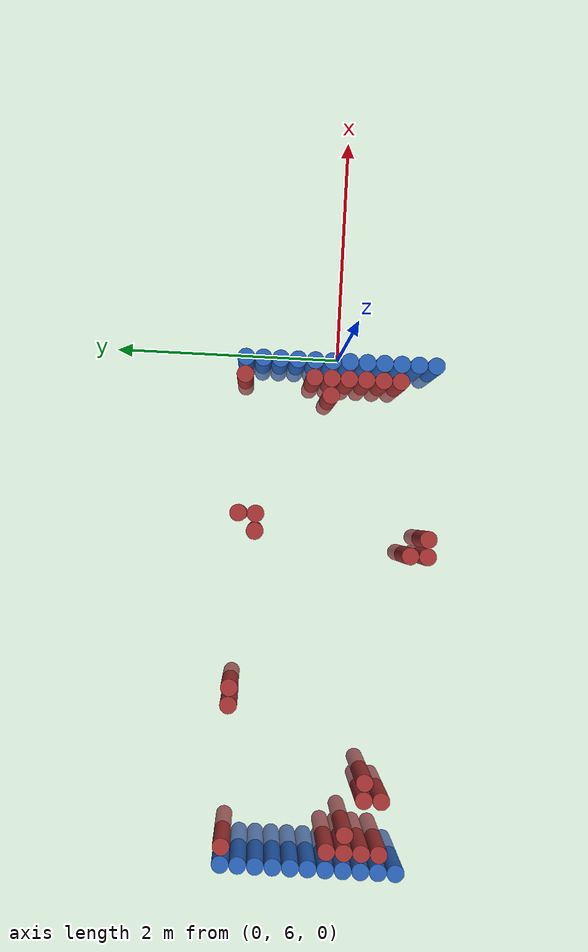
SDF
<sdf version="1.6">
 <world name="default">
  <model name="ground_plane">
   <static>1</static>
   <link name="link">
    <collision name="collision">
     <geometry><plane><normal>0 0 1</normal><size>100 100</size></plane></geometry>
     <surface><friction><ode><mu>100</mu><mu2>50</mu2></ode></friction></surface>
    </collision>
    <visual name="visual">
     <cast_shadows>0</cast_shadows>
     <geometry><plane><normal>0 0 1</normal><size>100 100</size></plane></geometry>
     <material>
      <script><uri>file://media/materials/scripts/gazebo.material</uri><name>Gazebo/Grey</name></script>
     </material>
    </visual>
   </link>
  </model>
  <model name="unit_cylinder_97">
   <static>1</static>
   <pose>-4.425000 5.325000 0.000000 0.000000 0.000000 0.000000</pose>
   <link name="link">
    <inertial>
     <mass>1</mass>
     <inertia><ixx>0.145833</ixx><ixy>0</ixy><ixz>0</ixz><iyy>0.145833</iyy><iyz>0</iyz><izz>0.125</izz></inertia>
    </inertial>
    <collision name="collision">
     <geometry><cylinder><radius>0.075000</radius><length>1</length></cylinder></geometry>
    </collision>
    <visual name="visual">
     <geometry><cylinder><radius>0.075000</radius><length>1</length></cylinder></geometry>
     <material>
      <ambient>0.152000 0.379000 0.720000 1</ambient>
      <diffuse>0.152000 0.379000 0.720000 1</diffuse>
     </material>
     <material>
      <script><name>Gazebo/Grey</name><uri>file://media/materials/scripts/gazebo.material</uri></script>
     </material>
    </visual>
   </link>
  </model>
  <model name="unit_cylinder_98">
   <static>1</static>
   <pose>-4.425000 5.475000 0.000000 0.000000 0.000000 0.000000</pose>
   <link name="link">
    <inertial>
     <mass>1</mass>
     <inertia><ixx>0.145833</ixx><ixy>0</ixy><ixz>0</ixz><iyy>0.145833</iyy><iyz>0</iyz><izz>0.125</izz></inertia>
    </inertial>
    <collision name="collision">
     <geometry><cylinder><radius>0.075000</radius><length>1</length></cylinder></geometry>
    </collision>
    <visual name="visual">
     <geometry><cylinder><radius>0.075000</radius><length>1</length></cylinder></geometry>
     <material>
      <ambient>0.152000 0.379000 0.720000 1</ambient>
      <diffuse>0.152000 0.379000 0.720000 1</diffuse>
     </material>
     <material>
      <script><name>Gazebo/Grey</name><uri>file://media/materials/scripts/gazebo.material</uri></script>
     </material>
    </visual>
   </link>
  </model>
  <model name="unit_cylinder_99">
   <static>1</static>
   <pose>-4.425000 5.625000 0.000000 0.000000 0.000000 0.000000</pose>
   <link name="link">
    <inertial>
     <mass>1</mass>
     <inertia><ixx>0.145833</ixx><ixy>0</ixy><ixz>0</ixz><iyy>0.145833</iyy><iyz>0</iyz><izz>0.125</izz></inertia>
    </inertial>
    <collision name="collision">
     <geometry><cylinder><radius>0.075000</radius><length>1</length></cylinder></geometry>
    </collision>
    <visual name="visual">
     <geometry><cylinder><radius>0.075000</radius><length>1</length></cylinder></geometry>
     <material>
      <ambient>0.152000 0.379000 0.720000 1</ambient>
      <diffuse>0.152000 0.379000 0.720000 1</diffuse>
     </material>
     <material>
      <script><name>Gazebo/Grey</name><uri>file://media/materials/scripts/gazebo.material</uri></script>
     </material>
    </visual>
   </link>
  </model>
  <model name="unit_cylinder_100">
   <static>1</static>
   <pose>-4.425000 5.775000 0.000000 0.000000 0.000000 0.000000</pose>
   <link name="link">
    <inertial>
     <mass>1</mass>
     <inertia><ixx>0.145833</ixx><ixy>0</ixy><ixz>0</ixz><iyy>0.145833</iyy><iyz>0</iyz><izz>0.125</izz></inertia>
    </inertial>
    <collision name="collision">
     <geometry><cylinder><radius>0.075000</radius><length>1</length></cylinder></geometry>
    </collision>
    <visual name="visual">
     <geometry><cylinder><radius>0.075000</radius><length>1</length></cylinder></geometry>
     <material>
      <ambient>0.152000 0.379000 0.720000 1</ambient>
      <diffuse>0.152000 0.379000 0.720000 1</diffuse>
     </material>
     <material>
      <script><name>Gazebo/Grey</name><uri>file://media/materials/scripts/gazebo.material</uri></script>
     </material>
    </visual>
   </link>
  </model>
  <model name="unit_cylinder_101">
   <static>1</static>
   <pose>-4.425000 5.925000 0.000000 0.000000 0.000000 0.000000</pose>
   <link name="link">
    <inertial>
     <mass>1</mass>
     <inertia><ixx>0.145833</ixx><ixy>0</ixy><ixz>0</ixz><iyy>0.145833</iyy><iyz>0</iyz><izz>0.125</izz></inertia>
    </inertial>
    <collision name="collision">
     <geometry><cylinder><radius>0.075000</radius><length>1</length></cylinder></geometry>
    </collision>
    <visual name="visual">
     <geometry><cylinder><radius>0.075000</radius><length>1</length></cylinder></geometry>
     <material>
      <ambient>0.152000 0.379000 0.720000 1</ambient>
      <diffuse>0.152000 0.379000 0.720000 1</diffuse>
     </material>
     <material>
      <script><name>Gazebo/Grey</name><uri>file://media/materials/scripts/gazebo.material</uri></script>
     </material>
    </visual>
   </link>
  </model>
  <model name="unit_cylinder_102">
   <static>1</static>
   <pose>-4.425000 6.075000 0.000000 0.000000 0.000000 0.000000</pose>
   <link name="link">
    <inertial>
     <mass>1</mass>
     <inertia><ixx>0.145833</ixx><ixy>0</ixy><ixz>0</ixz><iyy>0.145833</iyy><iyz>0</iyz><izz>0.125</izz></inertia>
    </inertial>
    <collision name="collision">
     <geometry><cylinder><radius>0.075000</radius><length>1</length></cylinder></geometry>
    </collision>
    <visual name="visual">
     <geometry><cylinder><radius>0.075000</radius><length>1</length></cylinder></geometry>
     <material>
      <ambient>0.152000 0.379000 0.720000 1</ambient>
      <diffuse>0.152000 0.379000 0.720000 1</diffuse>
     </material>
     <material>
      <script><name>Gazebo/Grey</name><uri>file://media/materials/scripts/gazebo.material</uri></script>
     </material>
    </visual>
   </link>
  </model>
  <model name="unit_cylinder_103">
   <static>1</static>
   <pose>-4.425000 6.225000 0.000000 0.000000 0.000000 0.000000</pose>
   <link name="link">
    <inertial>
     <mass>1</mass>
     <inertia><ixx>0.145833</ixx><ixy>0</ixy><ixz>0</ixz><iyy>0.145833</iyy><iyz>0</iyz><izz>0.125</izz></inertia>
    </inertial>
    <collision name="collision">
     <geometry><cylinder><radius>0.075000</radius><length>1</length></cylinder></geometry>
    </collision>
    <visual name="visual">
     <geometry><cylinder><radius>0.075000</radius><length>1</length></cylinder></geometry>
     <material>
      <ambient>0.152000 0.379000 0.720000 1</ambient>
      <diffuse>0.152000 0.379000 0.720000 1</diffuse>
     </material>
     <material>
      <script><name>Gazebo/Grey</name><uri>file://media/materials/scripts/gazebo.material</uri></script>
     </material>
    </visual>
   </link>
  </model>
  <model name="unit_cylinder_104">
   <static>1</static>
   <pose>-4.425000 6.375000 0.000000 0.000000 0.000000 0.000000</pose>
   <link name="link">
    <inertial>
     <mass>1</mass>
     <inertia><ixx>0.145833</ixx><ixy>0</ixy><ixz>0</ixz><iyy>0.145833</iyy><iyz>0</iyz><izz>0.125</izz></inertia>
    </inertial>
    <collision name="collision">
     <geometry><cylinder><radius>0.075000</radius><length>1</length></cylinder></geometry>
    </collision>
    <visual name="visual">
     <geometry><cylinder><radius>0.075000</radius><length>1</length></cylinder></geometry>
     <material>
      <ambient>0.152000 0.379000 0.720000 1</ambient>
      <diffuse>0.152000 0.379000 0.720000 1</diffuse>
     </material>
     <material>
      <script><name>Gazebo/Grey</name><uri>file://media/materials/scripts/gazebo.material</uri></script>
     </material>
    </visual>
   </link>
  </model>
  <model name="unit_cylinder_105">
   <static>1</static>
   <pose>-4.425000 6.525000 0.000000 0.000000 0.000000 0.000000</pose>
   <link name="link">
    <inertial>
     <mass>1</mass>
     <inertia><ixx>0.145833</ixx><ixy>0</ixy><ixz>0</ixz><iyy>0.145833</iyy><iyz>0</iyz><izz>0.125</izz></inertia>
    </inertial>
    <collision name="collision">
     <geometry><cylinder><radius>0.075000</radius><length>1</length></cylinder></geometry>
    </collision>
    <visual name="visual">
     <geometry><cylinder><radius>0.075000</radius><length>1</length></cylinder></geometry>
     <material>
      <ambient>0.152000 0.379000 0.720000 1</ambient>
      <diffuse>0.152000 0.379000 0.720000 1</diffuse>
     </material>
     <material>
      <script><name>Gazebo/Grey</name><uri>file://media/materials/scripts/gazebo.material</uri></script>
     </material>
    </visual>
   </link>
  </model>
  <model name="unit_cylinder_106">
   <static>1</static>
   <pose>-4.425000 6.675000 0.000000 0.000000 0.000000 0.000000</pose>
   <link name="link">
    <inertial>
     <mass>1</mass>
     <inertia><ixx>0.145833</ixx><ixy>0</ixy><ixz>0</ixz><iyy>0.145833</iyy><iyz>0</iyz><izz>0.125</izz></inertia>
    </inertial>
    <collision name="collision">
     <geometry><cylinder><radius>0.075000</radius><length>1</length></cylinder></geometry>
    </collision>
    <visual name="visual">
     <geometry><cylinder><radius>0.075000</radius><length>1</length></cylinder></geometry>
     <material>
      <ambient>0.152000 0.379000 0.720000 1</ambient>
      <diffuse>0.152000 0.379000 0.720000 1</diffuse>
     </material>
     <material>
      <script><name>Gazebo/Grey</name><uri>file://media/materials/scripts/gazebo.material</uri></script>
     </material>
    </visual>
   </link>
  </model>
  <model name="unit_cylinder_107">
   <static>1</static>
   <pose>-4.425000 6.825000 0.000000 0.000000 0.000000 0.000000</pose>
   <link name="link">
    <inertial>
     <mass>1</mass>
     <inertia><ixx>0.145833</ixx><ixy>0</ixy><ixz>0</ixz><iyy>0.145833</iyy><iyz>0</iyz><izz>0.125</izz></inertia>
    </inertial>
    <collision name="collision">
     <geometry><cylinder><radius>0.075000</radius><length>1</length></cylinder></geometry>
    </collision>
    <visual name="visual">
     <geometry><cylinder><radius>0.075000</radius><length>1</length></cylinder></geometry>
     <material>
      <ambient>0.152000 0.379000 0.720000 1</ambient>
      <diffuse>0.152000 0.379000 0.720000 1</diffuse>
     </material>
     <material>
      <script><name>Gazebo/Grey</name><uri>file://media/materials/scripts/gazebo.material</uri></script>
     </material>
    </visual>
   </link>
  </model>
  <model name="unit_cylinder_126">
   <static>1</static>
   <pose>-4.275000 5.475000 0.000000 0.000000 0.000000 0.000000</pose>
   <link name="link">
    <inertial>
     <mass>1</mass>
     <inertia><ixx>0.145833</ixx><ixy>0</ixy><ixz>0</ixz><iyy>0.145833</iyy><iyz>0</iyz><izz>0.125</izz></inertia>
    </inertial>
    <collision name="collision">
     <geometry><cylinder><radius>0.075000</radius><length>1</length></cylinder></geometry>
    </collision>
    <visual name="visual">
     <geometry><cylinder><radius>0.075000</radius><length>1</length></cylinder></geometry>
     <material>
      <ambient>0.648000 0.192000 0.192000 1</ambient>
      <diffuse>0.648000 0.192000 0.192000 1</diffuse>
     </material>
     <material>
      <script><name>Gazebo/Grey</name><uri>file://media/materials/scripts/gazebo.material</uri></script>
     </material>
    </visual>
   </link>
  </model>
  <model name="unit_cylinder_127">
   <static>1</static>
   <pose>-4.275000 5.625000 0.000000 0.000000 0.000000 0.000000</pose>
   <link name="link">
    <inertial>
     <mass>1</mass>
     <inertia><ixx>0.145833</ixx><ixy>0</ixy><ixz>0</ixz><iyy>0.145833</iyy><iyz>0</iyz><izz>0.125</izz></inertia>
    </inertial>
    <collision name="collision">
     <geometry><cylinder><radius>0.075000</radius><length>1</length></cylinder></geometry>
    </collision>
    <visual name="visual">
     <geometry><cylinder><radius>0.075000</radius><length>1</length></cylinder></geometry>
     <material>
      <ambient>0.648000 0.192000 0.192000 1</ambient>
      <diffuse>0.648000 0.192000 0.192000 1</diffuse>
     </material>
     <material>
      <script><name>Gazebo/Grey</name><uri>file://media/materials/scripts/gazebo.material</uri></script>
     </material>
    </visual>
   </link>
  </model>
  <model name="unit_cylinder_128">
   <static>1</static>
   <pose>-4.275000 5.775000 0.000000 0.000000 0.000000 0.000000</pose>
   <link name="link">
    <inertial>
     <mass>1</mass>
     <inertia><ixx>0.145833</ixx><ixy>0</ixy><ixz>0</ixz><iyy>0.145833</iyy><iyz>0</iyz><izz>0.125</izz></inertia>
    </inertial>
    <collision name="collision">
     <geometry><cylinder><radius>0.075000</radius><length>1</length></cylinder></geometry>
    </collision>
    <visual name="visual">
     <geometry><cylinder><radius>0.075000</radius><length>1</length></cylinder></geometry>
     <material>
      <ambient>0.648000 0.192000 0.192000 1</ambient>
      <diffuse>0.648000 0.192000 0.192000 1</diffuse>
     </material>
     <material>
      <script><name>Gazebo/Grey</name><uri>file://media/materials/scripts/gazebo.material</uri></script>
     </material>
    </visual>
   </link>
  </model>
  <model name="unit_cylinder_129">
   <static>1</static>
   <pose>-4.275000 5.925000 0.000000 0.000000 0.000000 0.000000</pose>
   <link name="link">
    <inertial>
     <mass>1</mass>
     <inertia><ixx>0.145833</ixx><ixy>0</ixy><ixz>0</ixz><iyy>0.145833</iyy><iyz>0</iyz><izz>0.125</izz></inertia>
    </inertial>
    <collision name="collision">
     <geometry><cylinder><radius>0.075000</radius><length>1</length></cylinder></geometry>
    </collision>
    <visual name="visual">
     <geometry><cylinder><radius>0.075000</radius><length>1</length></cylinder></geometry>
     <material>
      <ambient>0.648000 0.192000 0.192000 1</ambient>
      <diffuse>0.648000 0.192000 0.192000 1</diffuse>
     </material>
     <material>
      <script><name>Gazebo/Grey</name><uri>file://media/materials/scripts/gazebo.material</uri></script>
     </material>
    </visual>
   </link>
  </model>
  <model name="unit_cylinder_130">
   <static>1</static>
   <pose>-4.275000 6.825000 0.000000 0.000000 0.000000 0.000000</pose>
   <link name="link">
    <inertial>
     <mass>1</mass>
     <inertia><ixx>0.145833</ixx><ixy>0</ixy><ixz>0</ixz><iyy>0.145833</iyy><iyz>0</iyz><izz>0.125</izz></inertia>
    </inertial>
    <collision name="collision">
     <geometry><cylinder><radius>0.075000</radius><length>1</length></cylinder></geometry>
    </collision>
    <visual name="visual">
     <geometry><cylinder><radius>0.075000</radius><length>1</length></cylinder></geometry>
     <material>
      <ambient>0.648000 0.192000 0.192000 1</ambient>
      <diffuse>0.648000 0.192000 0.192000 1</diffuse>
     </material>
     <material>
      <script><name>Gazebo/Grey</name><uri>file://media/materials/scripts/gazebo.material</uri></script>
     </material>
    </visual>
   </link>
  </model>
  <model name="unit_cylinder_138">
   <static>1</static>
   <pose>-4.125000 5.775000 0.000000 0.000000 0.000000 0.000000</pose>
   <link name="link">
    <inertial>
     <mass>1</mass>
     <inertia><ixx>0.145833</ixx><ixy>0</ixy><ixz>0</ixz><iyy>0.145833</iyy><iyz>0</iyz><izz>0.125</izz></inertia>
    </inertial>
    <collision name="collision">
     <geometry><cylinder><radius>0.075000</radius><length>1</length></cylinder></geometry>
    </collision>
    <visual name="visual">
     <geometry><cylinder><radius>0.075000</radius><length>1</length></cylinder></geometry>
     <material>
      <ambient>0.648000 0.192000 0.192000 1</ambient>
      <diffuse>0.648000 0.192000 0.192000 1</diffuse>
     </material>
     <material>
      <script><name>Gazebo/Grey</name><uri>file://media/materials/scripts/gazebo.material</uri></script>
     </material>
    </visual>
   </link>
  </model>
  <model name="unit_cylinder_144">
   <static>1</static>
   <pose>-3.825000 5.475000 0.000000 0.000000 0.000000 0.000000</pose>
   <link name="link">
    <inertial>
     <mass>1</mass>
     <inertia><ixx>0.145833</ixx><ixy>0</ixy><ixz>0</ixz><iyy>0.145833</iyy><iyz>0</iyz><izz>0.125</izz></inertia>
    </inertial>
    <collision name="collision">
     <geometry><cylinder><radius>0.075000</radius><length>1</length></cylinder></geometry>
    </collision>
    <visual name="visual">
     <geometry><cylinder><radius>0.075000</radius><length>1</length></cylinder></geometry>
     <material>
      <ambient>0.648000 0.192000 0.192000 1</ambient>
      <diffuse>0.648000 0.192000 0.192000 1</diffuse>
     </material>
     <material>
      <script><name>Gazebo/Grey</name><uri>file://media/materials/scripts/gazebo.material</uri></script>
     </material>
    </visual>
   </link>
  </model>
  <model name="unit_cylinder_145">
   <static>1</static>
   <pose>-3.825000 5.625000 0.000000 0.000000 0.000000 0.000000</pose>
   <link name="link">
    <inertial>
     <mass>1</mass>
     <inertia><ixx>0.145833</ixx><ixy>0</ixy><ixz>0</ixz><iyy>0.145833</iyy><iyz>0</iyz><izz>0.125</izz></inertia>
    </inertial>
    <collision name="collision">
     <geometry><cylinder><radius>0.075000</radius><length>1</length></cylinder></geometry>
    </collision>
    <visual name="visual">
     <geometry><cylinder><radius>0.075000</radius><length>1</length></cylinder></geometry>
     <material>
      <ambient>0.648000 0.192000 0.192000 1</ambient>
      <diffuse>0.648000 0.192000 0.192000 1</diffuse>
     </material>
     <material>
      <script><name>Gazebo/Grey</name><uri>file://media/materials/scripts/gazebo.material</uri></script>
     </material>
    </visual>
   </link>
  </model>
  <model name="unit_cylinder_147">
   <static>1</static>
   <pose>-3.675000 5.625000 0.000000 0.000000 0.000000 0.000000</pose>
   <link name="link">
    <inertial>
     <mass>1</mass>
     <inertia><ixx>0.145833</ixx><ixy>0</ixy><ixz>0</ixz><iyy>0.145833</iyy><iyz>0</iyz><izz>0.125</izz></inertia>
    </inertial>
    <collision name="collision">
     <geometry><cylinder><radius>0.075000</radius><length>1</length></cylinder></geometry>
    </collision>
    <visual name="visual">
     <geometry><cylinder><radius>0.075000</radius><length>1</length></cylinder></geometry>
     <material>
      <ambient>0.648000 0.192000 0.192000 1</ambient>
      <diffuse>0.648000 0.192000 0.192000 1</diffuse>
     </material>
     <material>
      <script><name>Gazebo/Grey</name><uri>file://media/materials/scripts/gazebo.material</uri></script>
     </material>
    </visual>
   </link>
  </model>
  <model name="unit_cylinder_148">
   <static>1</static>
   <pose>-3.075000 6.825000 0.000000 0.000000 0.000000 0.000000</pose>
   <link name="link">
    <inertial>
     <mass>1</mass>
     <inertia><ixx>0.145833</ixx><ixy>0</ixy><ixz>0</ixz><iyy>0.145833</iyy><iyz>0</iyz><izz>0.125</izz></inertia>
    </inertial>
    <collision name="collision">
     <geometry><cylinder><radius>0.075000</radius><length>1</length></cylinder></geometry>
    </collision>
    <visual name="visual">
     <geometry><cylinder><radius>0.075000</radius><length>1</length></cylinder></geometry>
     <material>
      <ambient>0.648000 0.192000 0.192000 1</ambient>
      <diffuse>0.648000 0.192000 0.192000 1</diffuse>
     </material>
     <material>
      <script><name>Gazebo/Grey</name><uri>file://media/materials/scripts/gazebo.material</uri></script>
     </material>
    </visual>
   </link>
  </model>
  <model name="unit_cylinder_152">
   <static>1</static>
   <pose>-2.925000 6.825000 0.000000 0.000000 0.000000 0.000000</pose>
   <link name="link">
    <inertial>
     <mass>1</mass>
     <inertia><ixx>0.145833</ixx><ixy>0</ixy><ixz>0</ixz><iyy>0.145833</iyy><iyz>0</iyz><izz>0.125</izz></inertia>
    </inertial>
    <collision name="collision">
     <geometry><cylinder><radius>0.075000</radius><length>1</length></cylinder></geometry>
    </collision>
    <visual name="visual">
     <geometry><cylinder><radius>0.075000</radius><length>1</length></cylinder></geometry>
     <material>
      <ambient>0.648000 0.192000 0.192000 1</ambient>
      <diffuse>0.648000 0.192000 0.192000 1</diffuse>
     </material>
     <material>
      <script><name>Gazebo/Grey</name><uri>file://media/materials/scripts/gazebo.material</uri></script>
     </material>
    </visual>
   </link>
  </model>
  <model name="unit_cylinder_168">
   <static>1</static>
   <pose>-1.725000 5.175000 0.000000 0.000000 0.000000 0.000000</pose>
   <link name="link">
    <inertial>
     <mass>1</mass>
     <inertia><ixx>0.145833</ixx><ixy>0</ixy><ixz>0</ixz><iyy>0.145833</iyy><iyz>0</iyz><izz>0.125</izz></inertia>
    </inertial>
    <collision name="collision">
     <geometry><cylinder><radius>0.075000</radius><length>1</length></cylinder></geometry>
    </collision>
    <visual name="visual">
     <geometry><cylinder><radius>0.075000</radius><length>1</length></cylinder></geometry>
     <material>
      <ambient>0.648000 0.192000 0.192000 1</ambient>
      <diffuse>0.648000 0.192000 0.192000 1</diffuse>
     </material>
     <material>
      <script><name>Gazebo/Grey</name><uri>file://media/materials/scripts/gazebo.material</uri></script>
     </material>
    </visual>
   </link>
  </model>
  <model name="unit_cylinder_169">
   <static>1</static>
   <pose>-1.725000 5.325000 0.000000 0.000000 0.000000 0.000000</pose>
   <link name="link">
    <inertial>
     <mass>1</mass>
     <inertia><ixx>0.145833</ixx><ixy>0</ixy><ixz>0</ixz><iyy>0.145833</iyy><iyz>0</iyz><izz>0.125</izz></inertia>
    </inertial>
    <collision name="collision">
     <geometry><cylinder><radius>0.075000</radius><length>1</length></cylinder></geometry>
    </collision>
    <visual name="visual">
     <geometry><cylinder><radius>0.075000</radius><length>1</length></cylinder></geometry>
     <material>
      <ambient>0.648000 0.192000 0.192000 1</ambient>
      <diffuse>0.648000 0.192000 0.192000 1</diffuse>
     </material>
     <material>
      <script><name>Gazebo/Grey</name><uri>file://media/materials/scripts/gazebo.material</uri></script>
     </material>
    </visual>
   </link>
  </model>
  <model name="unit_cylinder_173">
   <static>1</static>
   <pose>-1.575000 5.175000 0.000000 0.000000 0.000000 0.000000</pose>
   <link name="link">
    <inertial>
     <mass>1</mass>
     <inertia><ixx>0.145833</ixx><ixy>0</ixy><ixz>0</ixz><iyy>0.145833</iyy><iyz>0</iyz><izz>0.125</izz></inertia>
    </inertial>
    <collision name="collision">
     <geometry><cylinder><radius>0.075000</radius><length>1</length></cylinder></geometry>
    </collision>
    <visual name="visual">
     <geometry><cylinder><radius>0.075000</radius><length>1</length></cylinder></geometry>
     <material>
      <ambient>0.648000 0.192000 0.192000 1</ambient>
      <diffuse>0.648000 0.192000 0.192000 1</diffuse>
     </material>
     <material>
      <script><name>Gazebo/Grey</name><uri>file://media/materials/scripts/gazebo.material</uri></script>
     </material>
    </visual>
   </link>
  </model>
  <model name="unit_cylinder_174">
   <static>1</static>
   <pose>-1.575000 6.675000 0.000000 0.000000 0.000000 0.000000</pose>
   <link name="link">
    <inertial>
     <mass>1</mass>
     <inertia><ixx>0.145833</ixx><ixy>0</ixy><ixz>0</ixz><iyy>0.145833</iyy><iyz>0</iyz><izz>0.125</izz></inertia>
    </inertial>
    <collision name="collision">
     <geometry><cylinder><radius>0.075000</radius><length>1</length></cylinder></geometry>
    </collision>
    <visual name="visual">
     <geometry><cylinder><radius>0.075000</radius><length>1</length></cylinder></geometry>
     <material>
      <ambient>0.648000 0.192000 0.192000 1</ambient>
      <diffuse>0.648000 0.192000 0.192000 1</diffuse>
     </material>
     <material>
      <script><name>Gazebo/Grey</name><uri>file://media/materials/scripts/gazebo.material</uri></script>
     </material>
    </visual>
   </link>
  </model>
  <model name="unit_cylinder_178">
   <static>1</static>
   <pose>-1.425000 6.675000 0.000000 0.000000 0.000000 0.000000</pose>
   <link name="link">
    <inertial>
     <mass>1</mass>
     <inertia><ixx>0.145833</ixx><ixy>0</ixy><ixz>0</ixz><iyy>0.145833</iyy><iyz>0</iyz><izz>0.125</izz></inertia>
    </inertial>
    <collision name="collision">
     <geometry><cylinder><radius>0.075000</radius><length>1</length></cylinder></geometry>
    </collision>
    <visual name="visual">
     <geometry><cylinder><radius>0.075000</radius><length>1</length></cylinder></geometry>
     <material>
      <ambient>0.648000 0.192000 0.192000 1</ambient>
      <diffuse>0.648000 0.192000 0.192000 1</diffuse>
     </material>
     <material>
      <script><name>Gazebo/Grey</name><uri>file://media/materials/scripts/gazebo.material</uri></script>
     </material>
    </visual>
   </link>
  </model>
  <model name="unit_cylinder_179">
   <static>1</static>
   <pose>-1.425000 6.825000 0.000000 0.000000 0.000000 0.000000</pose>
   <link name="link">
    <inertial>
     <mass>1</mass>
     <inertia><ixx>0.145833</ixx><ixy>0</ixy><ixz>0</ixz><iyy>0.145833</iyy><iyz>0</iyz><izz>0.125</izz></inertia>
    </inertial>
    <collision name="collision">
     <geometry><cylinder><radius>0.075000</radius><length>1</length></cylinder></geometry>
    </collision>
    <visual name="visual">
     <geometry><cylinder><radius>0.075000</radius><length>1</length></cylinder></geometry>
     <material>
      <ambient>0.648000 0.192000 0.192000 1</ambient>
      <diffuse>0.648000 0.192000 0.192000 1</diffuse>
     </material>
     <material>
      <script><name>Gazebo/Grey</name><uri>file://media/materials/scripts/gazebo.material</uri></script>
     </material>
    </visual>
   </link>
  </model>
  <model name="unit_cylinder_195">
   <static>1</static>
   <pose>-0.375000 6.075000 0.000000 0.000000 0.000000 0.000000</pose>
   <link name="link">
    <inertial>
     <mass>1</mass>
     <inertia><ixx>0.145833</ixx><ixy>0</ixy><ixz>0</ixz><iyy>0.145833</iyy><iyz>0</iyz><izz>0.125</izz></inertia>
    </inertial>
    <collision name="collision">
     <geometry><cylinder><radius>0.075000</radius><length>1</length></cylinder></geometry>
    </collision>
    <visual name="visual">
     <geometry><cylinder><radius>0.075000</radius><length>1</length></cylinder></geometry>
     <material>
      <ambient>0.648000 0.192000 0.192000 1</ambient>
      <diffuse>0.648000 0.192000 0.192000 1</diffuse>
     </material>
     <material>
      <script><name>Gazebo/Grey</name><uri>file://media/materials/scripts/gazebo.material</uri></script>
     </material>
    </visual>
   </link>
  </model>
  <model name="unit_cylinder_198">
   <static>1</static>
   <pose>-0.225000 5.475000 0.000000 0.000000 0.000000 0.000000</pose>
   <link name="link">
    <inertial>
     <mass>1</mass>
     <inertia><ixx>0.145833</ixx><ixy>0</ixy><ixz>0</ixz><iyy>0.145833</iyy><iyz>0</iyz><izz>0.125</izz></inertia>
    </inertial>
    <collision name="collision">
     <geometry><cylinder><radius>0.075000</radius><length>1</length></cylinder></geometry>
    </collision>
    <visual name="visual">
     <geometry><cylinder><radius>0.075000</radius><length>1</length></cylinder></geometry>
     <material>
      <ambient>0.648000 0.192000 0.192000 1</ambient>
      <diffuse>0.648000 0.192000 0.192000 1</diffuse>
     </material>
     <material>
      <script><name>Gazebo/Grey</name><uri>file://media/materials/scripts/gazebo.material</uri></script>
     </material>
    </visual>
   </link>
  </model>
  <model name="unit_cylinder_199">
   <static>1</static>
   <pose>-0.225000 5.625000 0.000000 0.000000 0.000000 0.000000</pose>
   <link name="link">
    <inertial>
     <mass>1</mass>
     <inertia><ixx>0.145833</ixx><ixy>0</ixy><ixz>0</ixz><iyy>0.145833</iyy><iyz>0</iyz><izz>0.125</izz></inertia>
    </inertial>
    <collision name="collision">
     <geometry><cylinder><radius>0.075000</radius><length>1</length></cylinder></geometry>
    </collision>
    <visual name="visual">
     <geometry><cylinder><radius>0.075000</radius><length>1</length></cylinder></geometry>
     <material>
      <ambient>0.648000 0.192000 0.192000 1</ambient>
      <diffuse>0.648000 0.192000 0.192000 1</diffuse>
     </material>
     <material>
      <script><name>Gazebo/Grey</name><uri>file://media/materials/scripts/gazebo.material</uri></script>
     </material>
    </visual>
   </link>
  </model>
  <model name="unit_cylinder_200">
   <static>1</static>
   <pose>-0.225000 5.775000 0.000000 0.000000 0.000000 0.000000</pose>
   <link name="link">
    <inertial>
     <mass>1</mass>
     <inertia><ixx>0.145833</ixx><ixy>0</ixy><ixz>0</ixz><iyy>0.145833</iyy><iyz>0</iyz><izz>0.125</izz></inertia>
    </inertial>
    <collision name="collision">
     <geometry><cylinder><radius>0.075000</radius><length>1</length></cylinder></geometry>
    </collision>
    <visual name="visual">
     <geometry><cylinder><radius>0.075000</radius><length>1</length></cylinder></geometry>
     <material>
      <ambient>0.648000 0.192000 0.192000 1</ambient>
      <diffuse>0.648000 0.192000 0.192000 1</diffuse>
     </material>
     <material>
      <script><name>Gazebo/Grey</name><uri>file://media/materials/scripts/gazebo.material</uri></script>
     </material>
    </visual>
   </link>
  </model>
  <model name="unit_cylinder_201">
   <static>1</static>
   <pose>-0.225000 5.925000 0.000000 0.000000 0.000000 0.000000</pose>
   <link name="link">
    <inertial>
     <mass>1</mass>
     <inertia><ixx>0.145833</ixx><ixy>0</ixy><ixz>0</ixz><iyy>0.145833</iyy><iyz>0</iyz><izz>0.125</izz></inertia>
    </inertial>
    <collision name="collision">
     <geometry><cylinder><radius>0.075000</radius><length>1</length></cylinder></geometry>
    </collision>
    <visual name="visual">
     <geometry><cylinder><radius>0.075000</radius><length>1</length></cylinder></geometry>
     <material>
      <ambient>0.648000 0.192000 0.192000 1</ambient>
      <diffuse>0.648000 0.192000 0.192000 1</diffuse>
     </material>
     <material>
      <script><name>Gazebo/Grey</name><uri>file://media/materials/scripts/gazebo.material</uri></script>
     </material>
    </visual>
   </link>
  </model>
  <model name="unit_cylinder_202">
   <static>1</static>
   <pose>-0.225000 6.075000 0.000000 0.000000 0.000000 0.000000</pose>
   <link name="link">
    <inertial>
     <mass>1</mass>
     <inertia><ixx>0.145833</ixx><ixy>0</ixy><ixz>0</ixz><iyy>0.145833</iyy><iyz>0</iyz><izz>0.125</izz></inertia>
    </inertial>
    <collision name="collision">
     <geometry><cylinder><radius>0.075000</radius><length>1</length></cylinder></geometry>
    </collision>
    <visual name="visual">
     <geometry><cylinder><radius>0.075000</radius><length>1</length></cylinder></geometry>
     <material>
      <ambient>0.648000 0.192000 0.192000 1</ambient>
      <diffuse>0.648000 0.192000 0.192000 1</diffuse>
     </material>
     <material>
      <script><name>Gazebo/Grey</name><uri>file://media/materials/scripts/gazebo.material</uri></script>
     </material>
    </visual>
   </link>
  </model>
  <model name="unit_cylinder_203">
   <static>1</static>
   <pose>-0.225000 6.225000 0.000000 0.000000 0.000000 0.000000</pose>
   <link name="link">
    <inertial>
     <mass>1</mass>
     <inertia><ixx>0.145833</ixx><ixy>0</ixy><ixz>0</ixz><iyy>0.145833</iyy><iyz>0</iyz><izz>0.125</izz></inertia>
    </inertial>
    <collision name="collision">
     <geometry><cylinder><radius>0.075000</radius><length>1</length></cylinder></geometry>
    </collision>
    <visual name="visual">
     <geometry><cylinder><radius>0.075000</radius><length>1</length></cylinder></geometry>
     <material>
      <ambient>0.648000 0.192000 0.192000 1</ambient>
      <diffuse>0.648000 0.192000 0.192000 1</diffuse>
     </material>
     <material>
      <script><name>Gazebo/Grey</name><uri>file://media/materials/scripts/gazebo.material</uri></script>
     </material>
    </visual>
   </link>
  </model>
  <model name="unit_cylinder_204">
   <static>1</static>
   <pose>-0.225000 6.825000 0.000000 0.000000 0.000000 0.000000</pose>
   <link name="link">
    <inertial>
     <mass>1</mass>
     <inertia><ixx>0.145833</ixx><ixy>0</ixy><ixz>0</ixz><iyy>0.145833</iyy><iyz>0</iyz><izz>0.125</izz></inertia>
    </inertial>
    <collision name="collision">
     <geometry><cylinder><radius>0.075000</radius><length>1</length></cylinder></geometry>
    </collision>
    <visual name="visual">
     <geometry><cylinder><radius>0.075000</radius><length>1</length></cylinder></geometry>
     <material>
      <ambient>0.648000 0.192000 0.192000 1</ambient>
      <diffuse>0.648000 0.192000 0.192000 1</diffuse>
     </material>
     <material>
      <script><name>Gazebo/Grey</name><uri>file://media/materials/scripts/gazebo.material</uri></script>
     </material>
    </visual>
   </link>
  </model>
  <model name="unit_cylinder_211">
   <static>1</static>
   <pose>-0.075000 5.175000 0.000000 0.000000 0.000000 0.000000</pose>
   <link name="link">
    <inertial>
     <mass>1</mass>
     <inertia><ixx>0.145833</ixx><ixy>0</ixy><ixz>0</ixz><iyy>0.145833</iyy><iyz>0</iyz><izz>0.125</izz></inertia>
    </inertial>
    <collision name="collision">
     <geometry><cylinder><radius>0.075000</radius><length>1</length></cylinder></geometry>
    </collision>
    <visual name="visual">
     <geometry><cylinder><radius>0.075000</radius><length>1</length></cylinder></geometry>
     <material>
      <ambient>0.152000 0.379000 0.720000 1</ambient>
      <diffuse>0.152000 0.379000 0.720000 1</diffuse>
     </material>
     <material>
      <script><name>Gazebo/Grey</name><uri>file://media/materials/scripts/gazebo.material</uri></script>
     </material>
    </visual>
   </link>
  </model>
  <model name="unit_cylinder_212">
   <static>1</static>
   <pose>-0.075000 5.325000 0.000000 0.000000 0.000000 0.000000</pose>
   <link name="link">
    <inertial>
     <mass>1</mass>
     <inertia><ixx>0.145833</ixx><ixy>0</ixy><ixz>0</ixz><iyy>0.145833</iyy><iyz>0</iyz><izz>0.125</izz></inertia>
    </inertial>
    <collision name="collision">
     <geometry><cylinder><radius>0.075000</radius><length>1</length></cylinder></geometry>
    </collision>
    <visual name="visual">
     <geometry><cylinder><radius>0.075000</radius><length>1</length></cylinder></geometry>
     <material>
      <ambient>0.152000 0.379000 0.720000 1</ambient>
      <diffuse>0.152000 0.379000 0.720000 1</diffuse>
     </material>
     <material>
      <script><name>Gazebo/Grey</name><uri>file://media/materials/scripts/gazebo.material</uri></script>
     </material>
    </visual>
   </link>
  </model>
  <model name="unit_cylinder_213">
   <static>1</static>
   <pose>-0.075000 5.475000 0.000000 0.000000 0.000000 0.000000</pose>
   <link name="link">
    <inertial>
     <mass>1</mass>
     <inertia><ixx>0.145833</ixx><ixy>0</ixy><ixz>0</ixz><iyy>0.145833</iyy><iyz>0</iyz><izz>0.125</izz></inertia>
    </inertial>
    <collision name="collision">
     <geometry><cylinder><radius>0.075000</radius><length>1</length></cylinder></geometry>
    </collision>
    <visual name="visual">
     <geometry><cylinder><radius>0.075000</radius><length>1</length></cylinder></geometry>
     <material>
      <ambient>0.152000 0.379000 0.720000 1</ambient>
      <diffuse>0.152000 0.379000 0.720000 1</diffuse>
     </material>
     <material>
      <script><name>Gazebo/Grey</name><uri>file://media/materials/scripts/gazebo.material</uri></script>
     </material>
    </visual>
   </link>
  </model>
  <model name="unit_cylinder_214">
   <static>1</static>
   <pose>-0.075000 5.625000 0.000000 0.000000 0.000000 0.000000</pose>
   <link name="link">
    <inertial>
     <mass>1</mass>
     <inertia><ixx>0.145833</ixx><ixy>0</ixy><ixz>0</ixz><iyy>0.145833</iyy><iyz>0</iyz><izz>0.125</izz></inertia>
    </inertial>
    <collision name="collision">
     <geometry><cylinder><radius>0.075000</radius><length>1</length></cylinder></geometry>
    </collision>
    <visual name="visual">
     <geometry><cylinder><radius>0.075000</radius><length>1</length></cylinder></geometry>
     <material>
      <ambient>0.152000 0.379000 0.720000 1</ambient>
      <diffuse>0.152000 0.379000 0.720000 1</diffuse>
     </material>
     <material>
      <script><name>Gazebo/Grey</name><uri>file://media/materials/scripts/gazebo.material</uri></script>
     </material>
    </visual>
   </link>
  </model>
  <model name="unit_cylinder_215">
   <static>1</static>
   <pose>-0.075000 5.775000 0.000000 0.000000 0.000000 0.000000</pose>
   <link name="link">
    <inertial>
     <mass>1</mass>
     <inertia><ixx>0.145833</ixx><ixy>0</ixy><ixz>0</ixz><iyy>0.145833</iyy><iyz>0</iyz><izz>0.125</izz></inertia>
    </inertial>
    <collision name="collision">
     <geometry><cylinder><radius>0.075000</radius><length>1</length></cylinder></geometry>
    </collision>
    <visual name="visual">
     <geometry><cylinder><radius>0.075000</radius><length>1</length></cylinder></geometry>
     <material>
      <ambient>0.152000 0.379000 0.720000 1</ambient>
      <diffuse>0.152000 0.379000 0.720000 1</diffuse>
     </material>
     <material>
      <script><name>Gazebo/Grey</name><uri>file://media/materials/scripts/gazebo.material</uri></script>
     </material>
    </visual>
   </link>
  </model>
  <model name="unit_cylinder_216">
   <static>1</static>
   <pose>-0.075000 5.925000 0.000000 0.000000 0.000000 0.000000</pose>
   <link name="link">
    <inertial>
     <mass>1</mass>
     <inertia><ixx>0.145833</ixx><ixy>0</ixy><ixz>0</ixz><iyy>0.145833</iyy><iyz>0</iyz><izz>0.125</izz></inertia>
    </inertial>
    <collision name="collision">
     <geometry><cylinder><radius>0.075000</radius><length>1</length></cylinder></geometry>
    </collision>
    <visual name="visual">
     <geometry><cylinder><radius>0.075000</radius><length>1</length></cylinder></geometry>
     <material>
      <ambient>0.152000 0.379000 0.720000 1</ambient>
      <diffuse>0.152000 0.379000 0.720000 1</diffuse>
     </material>
     <material>
      <script><name>Gazebo/Grey</name><uri>file://media/materials/scripts/gazebo.material</uri></script>
     </material>
    </visual>
   </link>
  </model>
  <model name="unit_cylinder_217">
   <static>1</static>
   <pose>-0.075000 6.075000 0.000000 0.000000 0.000000 0.000000</pose>
   <link name="link">
    <inertial>
     <mass>1</mass>
     <inertia><ixx>0.145833</ixx><ixy>0</ixy><ixz>0</ixz><iyy>0.145833</iyy><iyz>0</iyz><izz>0.125</izz></inertia>
    </inertial>
    <collision name="collision">
     <geometry><cylinder><radius>0.075000</radius><length>1</length></cylinder></geometry>
    </collision>
    <visual name="visual">
     <geometry><cylinder><radius>0.075000</radius><length>1</length></cylinder></geometry>
     <material>
      <ambient>0.152000 0.379000 0.720000 1</ambient>
      <diffuse>0.152000 0.379000 0.720000 1</diffuse>
     </material>
     <material>
      <script><name>Gazebo/Grey</name><uri>file://media/materials/scripts/gazebo.material</uri></script>
     </material>
    </visual>
   </link>
  </model>
  <model name="unit_cylinder_218">
   <static>1</static>
   <pose>-0.075000 6.225000 0.000000 0.000000 0.000000 0.000000</pose>
   <link name="link">
    <inertial>
     <mass>1</mass>
     <inertia><ixx>0.145833</ixx><ixy>0</ixy><ixz>0</ixz><iyy>0.145833</iyy><iyz>0</iyz><izz>0.125</izz></inertia>
    </inertial>
    <collision name="collision">
     <geometry><cylinder><radius>0.075000</radius><length>1</length></cylinder></geometry>
    </collision>
    <visual name="visual">
     <geometry><cylinder><radius>0.075000</radius><length>1</length></cylinder></geometry>
     <material>
      <ambient>0.152000 0.379000 0.720000 1</ambient>
      <diffuse>0.152000 0.379000 0.720000 1</diffuse>
     </material>
     <material>
      <script><name>Gazebo/Grey</name><uri>file://media/materials/scripts/gazebo.material</uri></script>
     </material>
    </visual>
   </link>
  </model>
  <model name="unit_cylinder_219">
   <static>1</static>
   <pose>-0.075000 6.375000 0.000000 0.000000 0.000000 0.000000</pose>
   <link name="link">
    <inertial>
     <mass>1</mass>
     <inertia><ixx>0.145833</ixx><ixy>0</ixy><ixz>0</ixz><iyy>0.145833</iyy><iyz>0</iyz><izz>0.125</izz></inertia>
    </inertial>
    <collision name="collision">
     <geometry><cylinder><radius>0.075000</radius><length>1</length></cylinder></geometry>
    </collision>
    <visual name="visual">
     <geometry><cylinder><radius>0.075000</radius><length>1</length></cylinder></geometry>
     <material>
      <ambient>0.152000 0.379000 0.720000 1</ambient>
      <diffuse>0.152000 0.379000 0.720000 1</diffuse>
     </material>
     <material>
      <script><name>Gazebo/Grey</name><uri>file://media/materials/scripts/gazebo.material</uri></script>
     </material>
    </visual>
   </link>
  </model>
  <model name="unit_cylinder_220">
   <static>1</static>
   <pose>-0.075000 6.525000 0.000000 0.000000 0.000000 0.000000</pose>
   <link name="link">
    <inertial>
     <mass>1</mass>
     <inertia><ixx>0.145833</ixx><ixy>0</ixy><ixz>0</ixz><iyy>0.145833</iyy><iyz>0</iyz><izz>0.125</izz></inertia>
    </inertial>
    <collision name="collision">
     <geometry><cylinder><radius>0.075000</radius><length>1</length></cylinder></geometry>
    </collision>
    <visual name="visual">
     <geometry><cylinder><radius>0.075000</radius><length>1</length></cylinder></geometry>
     <material>
      <ambient>0.152000 0.379000 0.720000 1</ambient>
      <diffuse>0.152000 0.379000 0.720000 1</diffuse>
     </material>
     <material>
      <script><name>Gazebo/Grey</name><uri>file://media/materials/scripts/gazebo.material</uri></script>
     </material>
    </visual>
   </link>
  </model>
  <model name="unit_cylinder_221">
   <static>1</static>
   <pose>-0.075000 6.675000 0.000000 0.000000 0.000000 0.000000</pose>
   <link name="link">
    <inertial>
     <mass>1</mass>
     <inertia><ixx>0.145833</ixx><ixy>0</ixy><ixz>0</ixz><iyy>0.145833</iyy><iyz>0</iyz><izz>0.125</izz></inertia>
    </inertial>
    <collision name="collision">
     <geometry><cylinder><radius>0.075000</radius><length>1</length></cylinder></geometry>
    </collision>
    <visual name="visual">
     <geometry><cylinder><radius>0.075000</radius><length>1</length></cylinder></geometry>
     <material>
      <ambient>0.152000 0.379000 0.720000 1</ambient>
      <diffuse>0.152000 0.379000 0.720000 1</diffuse>
     </material>
     <material>
      <script><name>Gazebo/Grey</name><uri>file://media/materials/scripts/gazebo.material</uri></script>
     </material>
    </visual>
   </link>
  </model>
  <model name="unit_cylinder_222">
   <static>1</static>
   <pose>-0.075000 6.825000 0.000000 0.000000 0.000000 0.000000</pose>
   <link name="link">
    <inertial>
     <mass>1</mass>
     <inertia><ixx>0.145833</ixx><ixy>0</ixy><ixz>0</ixz><iyy>0.145833</iyy><iyz>0</iyz><izz>0.125</izz></inertia>
    </inertial>
    <collision name="collision">
     <geometry><cylinder><radius>0.075000</radius><length>1</length></cylinder></geometry>
    </collision>
    <visual name="visual">
     <geometry><cylinder><radius>0.075000</radius><length>1</length></cylinder></geometry>
     <material>
      <ambient>0.152000 0.379000 0.720000 1</ambient>
      <diffuse>0.152000 0.379000 0.720000 1</diffuse>
     </material>
     <material>
      <script><name>Gazebo/Grey</name><uri>file://media/materials/scripts/gazebo.material</uri></script>
     </material>
    </visual>
   </link>
  </model>
 </world>
</sdf>
